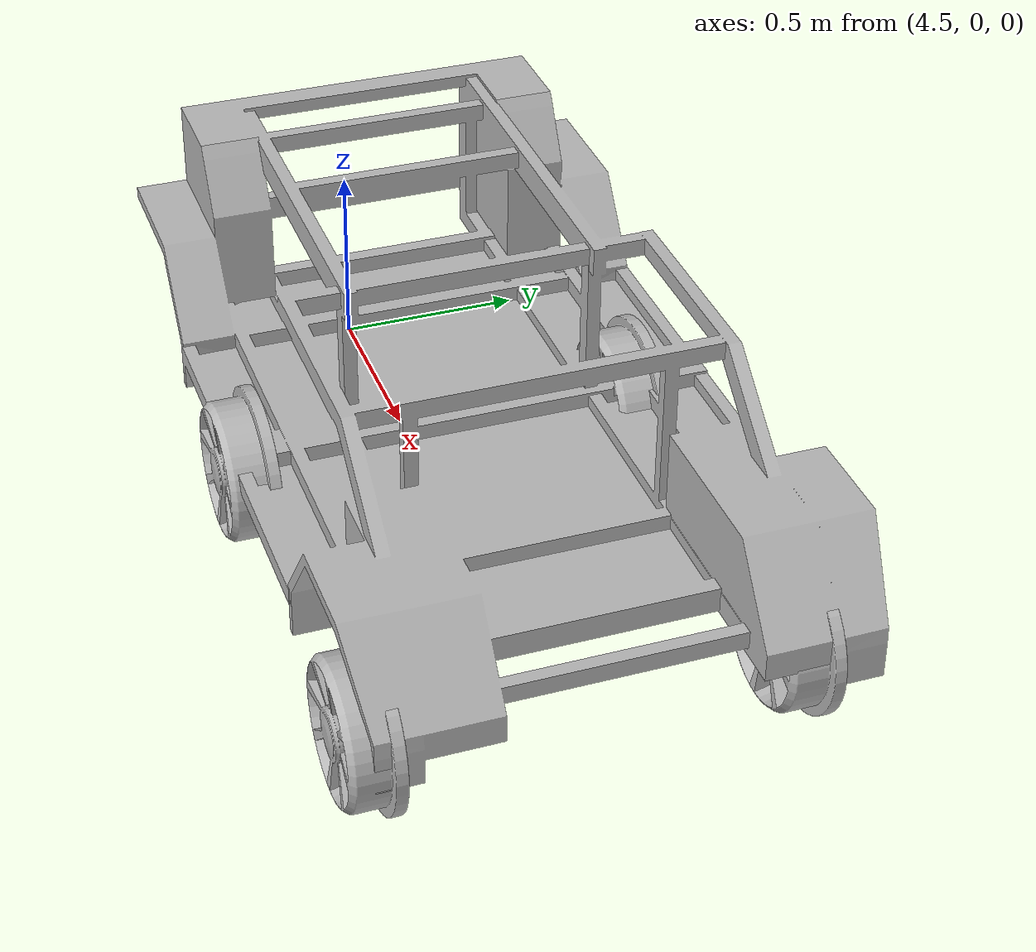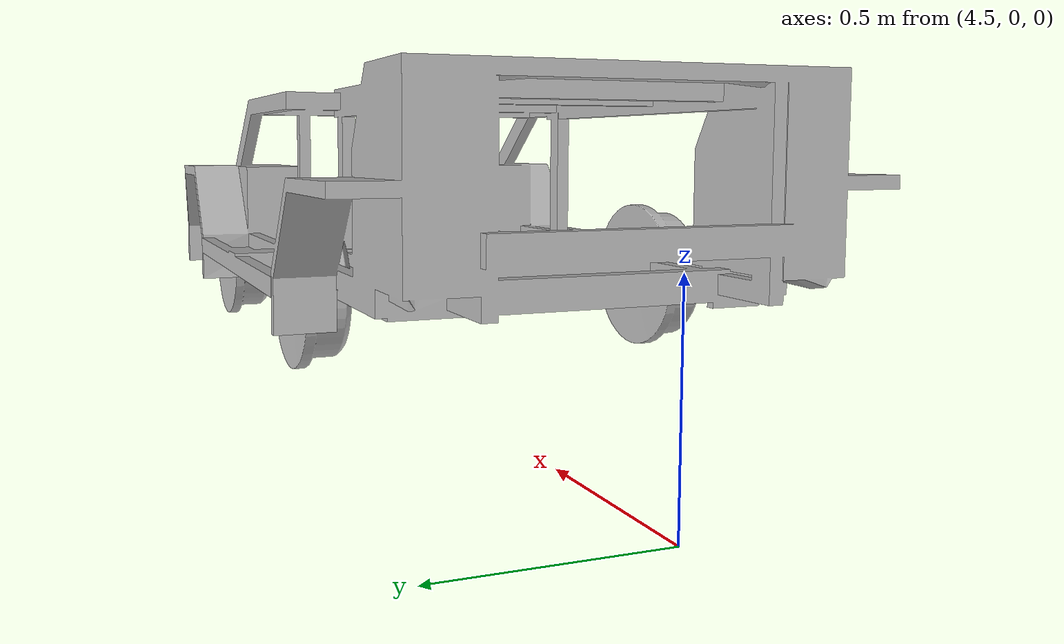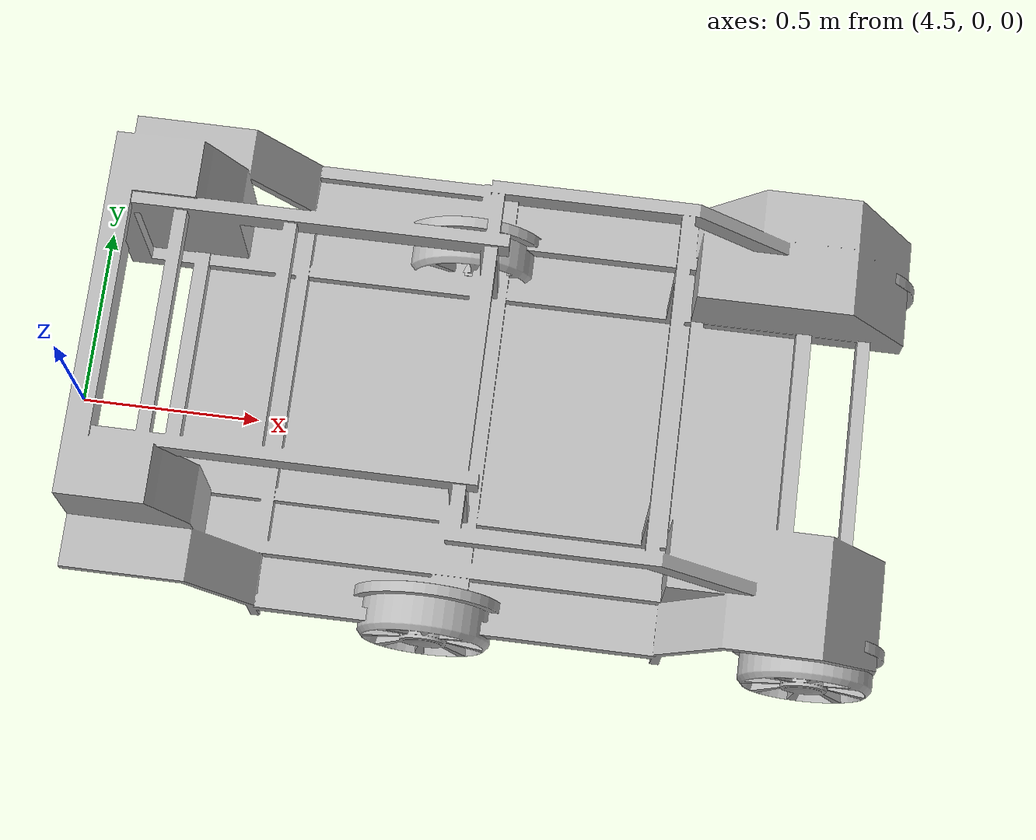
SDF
<?xml version="1.0" ?>
<sdf version="1.6">
  <model name="newamp">
    <static>false</static>
    <link name="hull">
      <visual name="visual">
        <geometry>
          <mesh>
            <uri>model://newamp/meshes/amp_hull.obj</uri>
            <scale>1 1 1</scale> <!-- Adjust scale if needed -->
          </mesh>
        </geometry>
            <material>
      <script>
        <uri>file://model://newamp/meshes/textures/</uri>
        <name>amp_hull</name>
      </script>
    </material>
      </visual>
      <collision name="hull">
        <geometry>
          <mesh>
            <uri>model://newamp/meshes/amp_hull.obj</uri>
            <scale>1 1 1</scale>
          </mesh>
        </geometry>

      </collision>
    </link>

    <link name="front_right_wheel">
    <pose>0 0 -0.05 0 0 0</pose>
      <visual name="visual">
        <geometry>
          <mesh>
            <uri>model://newamp/meshes/amp_wheel.obj</uri>
            <scale>1 1 1</scale> <!-- Adjust scale if needed -->
          </mesh>
        </geometry>
            <material>
      <script>
        <uri>file://model://newamp/meshes/textures/</uri>
        <name>amp_wheel</name>
      </script>
    </material>
      </visual>
      <collision name="front_right_wheel">
        <geometry>
          <mesh>
            <uri>model://newamp/meshes/amp_wheel.obj</uri>
            <scale>1 1 1</scale>
          </mesh>
        </geometry>
      </collision>
    </link>

     <link name="front_left_wheel">
    <pose>0 1 -0.05 0 0 0</pose>
      <visual name="visual">
        <geometry>
          <mesh>
            <uri>model://newamp/meshes/amp_wheel.obj</uri>
            <scale>1 1 1</scale> <!-- Adjust scale if needed -->
          </mesh>
        </geometry>
            <material>
      <script>
        <uri>file://model://newamp/meshes/textures/</uri>
        <name>amp_wheel</name>
      </script>
    </material>
      </visual>
      <collision name="front_left_wheel">
        <geometry>
          <mesh>
            <uri>model://newamp/meshes/amp_wheel.obj</uri>
            <scale>1 1 1</scale>
          </mesh>
        </geometry>
      </collision>
    </link>

     <link name="back_right_wheel">
    <pose>-1 0 -0.05 0 0 0</pose>
      <visual name="visual">
        <geometry>
          <mesh>
            <uri>model://newamp/meshes/amp_wheel.obj</uri>
            <scale>1 1 1</scale> <!-- Adjust scale if needed -->
          </mesh>
        </geometry>
            <material>
      <script>
        <uri>file://model://newamp/meshes/textures/</uri>
        <name>amp_wheel</name>
      </script>
    </material>
      </visual>
      <collision name="back_right_wheel">
        <geometry>
          <mesh>
            <uri>model://newamp/meshes/amp_wheel.obj</uri>
            <scale>1 1 1</scale>
          </mesh>
        </geometry>
      </collision>
    </link>

     <link name="back_left_wheel">
    <pose>-1 1 -0.05 0 0 0</pose>
      <visual name="visual">
        <geometry>
          <mesh>
            <uri>model://newamp/meshes/amp_wheel.obj</uri>
            <scale>1 1 1</scale> <!-- Adjust scale if needed -->
          </mesh>
        </geometry>
            <material>
      <script>
        <uri>file://model://newamp/meshes/textures/</uri>
        <name>amp_wheel</name>
      </script>
    </material>
      </visual>
      <collision name="back_left_wheel">
        <geometry>
          <mesh>
            <uri>model://newamp/meshes/amp_wheel.obj</uri>
            <scale>1 1 1</scale>
          </mesh>
        </geometry>
      </collision>
    </link>

    <joint name="front_left_wheel_joint" type="fixed">
  <parent>hull</parent>
  <child>front_left_wheel</child>
  <axis>
    <xyz>0 1 0</xyz> <!-- Rotation axis -->
  </axis>
</joint>

  <joint name="front_right_wheel_joint" type="fixed">
  <parent>hull</parent>
  <child>front_right_wheel</child>
  <axis>
    <xyz>0 1 0</xyz> <!-- Rotation axis -->
  </axis>
</joint>

<joint name="back_right_wheel_joint" type="fixed">
  <parent>hull</parent>
  <child>back_right_wheel</child>
  <axis>
    <xyz>0 1 0</xyz> <!-- Rotation axis -->
  </axis>
</joint>

<joint name="back_left_wheel_joint" type="fixed">
  <parent>hull</parent>
  <child>back_left_wheel</child>
  <axis>
    <xyz>0 1 0</xyz> <!-- Rotation axis -->
  </axis>
</joint>

  </model>
</sdf>
